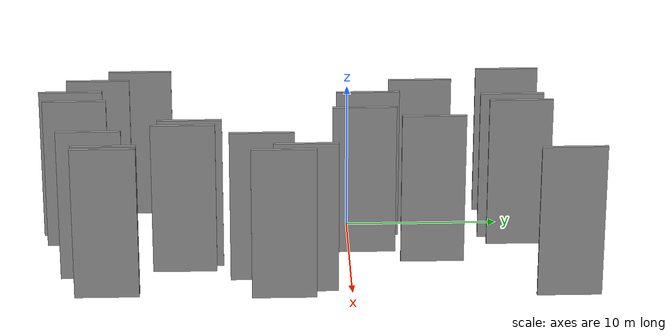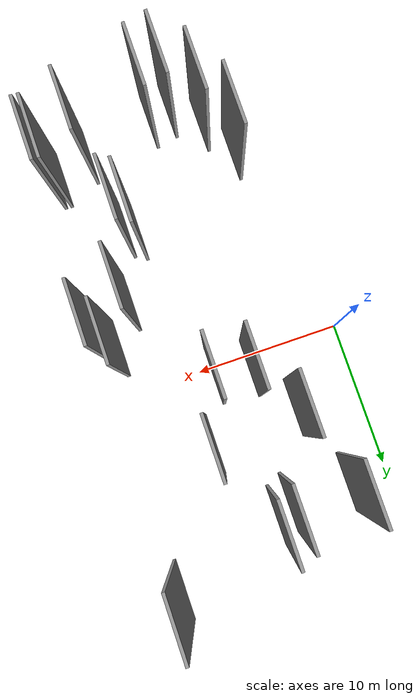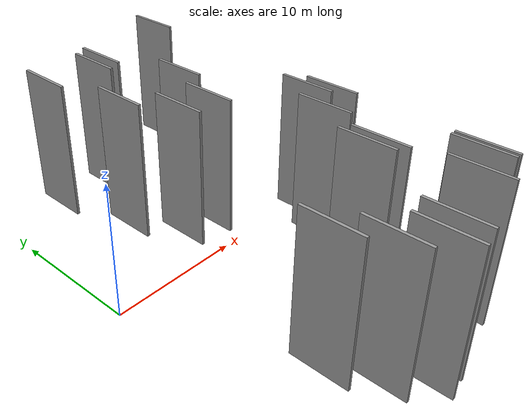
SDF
<sdf version="1.6">
 <world name="default">
  <scene>
   <sky><clouds><speed>12</speed></clouds></sky>
   <ambient>0.4 0.4 0.4 1</ambient>
   <background>0.7 0.7 0.7 1</background>
   <shadows>1</shadows>
  </scene>
  <gravity>0 0 -9.8066</gravity>
  <magnetic_field>6e-06 2.3e-05 -4.2e-05</magnetic_field>
  <physics default="0" name="default_physics" type="ode">
   <ode>
    <solver>
     <type>quick</type>
     <iters>10</iters>
     <sor>1.0</sor>
     <use_dynamic_moi_rescaling>0</use_dynamic_moi_rescaling>
    </solver>
    <constraints>
     <cfm>0</cfm>
     <erp>0.2</erp>
     <contact_max_correcting_vel>100</contact_max_correcting_vel>
     <contact_surface_layer>0.001</contact_surface_layer>
    </constraints>
   </ode>
   <max_step_size>0.004</max_step_size>
   <real_time_factor>1</real_time_factor>
   <real_time_update_rate>250</real_time_update_rate>
  </physics>
  <light name="sun" type="directional">
   <pose>0 0 10 0 0 0</pose>
   <diffuse>0.8 0.8 0.8 1</diffuse>
   <specular>0.2 0.2 0.2 1</specular>
   <attenuation>
    <range>1000</range>
    <constant>0.9</constant>
    <linear>0.01</linear>
    <quadratic>0.001</quadratic>
   </attenuation>
   <direction>-0.5 0.1 -0.9</direction>
  </light>
  <model name="grey_wall_1">
   <static>1</static>
   <pose>7.6689 -17.4527 2.5 0.000000 0.000000 1.570796</pose>
   <link name="link">
    <pose>0 0 5.00 0 0 0</pose>
    <collision name="collision"><geometry><box><size>4.00 0.2 10.00</size></box></geometry></collision>
    <visual name="visual">
     <cast_shadows>0</cast_shadows>
     <geometry><box><size>4.00 0.2 10.00</size></box></geometry>
     <material>
      <script>
       <uri>model://grey_wall/materials/scripts</uri>
       <uri>model://grey_wall/materials/textures</uri>
       <name>vrc/grey_wall</name>
      </script>
     </material>
    </visual>
   </link>
  </model>
  <model name="grey_wall_2">
   <static>1</static>
   <pose>15.4829 13.1585 2.5 0.000000 0.000000 1.570796</pose>
   <link name="link">
    <pose>0 0 5.00 0 0 0</pose>
    <collision name="collision"><geometry><box><size>4.00 0.2 10.00</size></box></geometry></collision>
    <visual name="visual">
     <cast_shadows>0</cast_shadows>
     <geometry><box><size>4.00 0.2 10.00</size></box></geometry>
     <material>
      <script>
       <uri>model://grey_wall/materials/scripts</uri>
       <uri>model://grey_wall/materials/textures</uri>
       <name>vrc/grey_wall</name>
      </script>
     </material>
    </visual>
   </link>
  </model>
  <model name="grey_wall_3">
   <static>1</static>
   <pose>8.2213 10.6185 2.5 0.000000 0.000000 1.570796</pose>
   <link name="link">
    <pose>0 0 5.00 0 0 0</pose>
    <collision name="collision"><geometry><box><size>4.00 0.2 10.00</size></box></geometry></collision>
    <visual name="visual">
     <cast_shadows>0</cast_shadows>
     <geometry><box><size>4.00 0.2 10.00</size></box></geometry>
     <material>
      <script>
       <uri>model://grey_wall/materials/scripts</uri>
       <uri>model://grey_wall/materials/textures</uri>
       <name>vrc/grey_wall</name>
      </script>
     </material>
    </visual>
   </link>
  </model>
  <model name="grey_wall_4">
   <static>1</static>
   <pose>9.1236 0.7309 2.5 0.000000 0.000000 1.570796</pose>
   <link name="link">
    <pose>0 0 5.00 0 0 0</pose>
    <collision name="collision"><geometry><box><size>4.00 0.2 10.00</size></box></geometry></collision>
    <visual name="visual">
     <cast_shadows>0</cast_shadows>
     <geometry><box><size>4.00 0.2 10.00</size></box></geometry>
     <material>
      <script>
       <uri>model://grey_wall/materials/scripts</uri>
       <uri>model://grey_wall/materials/textures</uri>
       <name>vrc/grey_wall</name>
      </script>
     </material>
    </visual>
   </link>
  </model>
  <model name="grey_wall_5">
   <static>1</static>
   <pose>10.8426 -10.1798 2.5 0.000000 0.000000 1.570796</pose>
   <link name="link">
    <pose>0 0 5.00 0 0 0</pose>
    <collision name="collision"><geometry><box><size>4.00 0.2 10.00</size></box></geometry></collision>
    <visual name="visual">
     <cast_shadows>0</cast_shadows>
     <geometry><box><size>4.00 0.2 10.00</size></box></geometry>
     <material>
      <script>
       <uri>model://grey_wall/materials/scripts</uri>
       <uri>model://grey_wall/materials/textures</uri>
       <name>vrc/grey_wall</name>
      </script>
     </material>
    </visual>
   </link>
  </model>
  <model name="grey_wall_6">
   <static>1</static>
   <pose>4.7963 4.4193 2.5 0.000000 0.000000 1.570796</pose>
   <link name="link">
    <pose>0 0 5.00 0 0 0</pose>
    <collision name="collision"><geometry><box><size>4.00 0.2 10.00</size></box></geometry></collision>
    <visual name="visual">
     <cast_shadows>0</cast_shadows>
     <geometry><box><size>4.00 0.2 10.00</size></box></geometry>
     <material>
      <script>
       <uri>model://grey_wall/materials/scripts</uri>
       <uri>model://grey_wall/materials/textures</uri>
       <name>vrc/grey_wall</name>
      </script>
     </material>
    </visual>
   </link>
  </model>
  <model name="grey_wall_7">
   <static>1</static>
   <pose>11.5899 -10.6027 2.5 0.000000 0.000000 1.570796</pose>
   <link name="link">
    <pose>0 0 5.00 0 0 0</pose>
    <collision name="collision"><geometry><box><size>4.00 0.2 10.00</size></box></geometry></collision>
    <visual name="visual">
     <cast_shadows>0</cast_shadows>
     <geometry><box><size>4.00 0.2 10.00</size></box></geometry>
     <material>
      <script>
       <uri>model://grey_wall/materials/scripts</uri>
       <uri>model://grey_wall/materials/textures</uri>
       <name>vrc/grey_wall</name>
      </script>
     </material>
    </visual>
   </link>
  </model>
  <model name="grey_wall_8">
   <static>1</static>
   <pose>15.0065 -15.3878 2.5 0.000000 0.000000 1.570796</pose>
   <link name="link">
    <pose>0 0 5.00 0 0 0</pose>
    <collision name="collision"><geometry><box><size>4.00 0.2 10.00</size></box></geometry></collision>
    <visual name="visual">
     <cast_shadows>0</cast_shadows>
     <geometry><box><size>4.00 0.2 10.00</size></box></geometry>
     <material>
      <script>
       <uri>model://grey_wall/materials/scripts</uri>
       <uri>model://grey_wall/materials/textures</uri>
       <name>vrc/grey_wall</name>
      </script>
     </material>
    </visual>
   </link>
  </model>
  <model name="grey_wall_9">
   <static>1</static>
   <pose>15.3552 -4.4436 2.5 0.000000 0.000000 1.570796</pose>
   <link name="link">
    <pose>0 0 5.00 0 0 0</pose>
    <collision name="collision"><geometry><box><size>4.00 0.2 10.00</size></box></geometry></collision>
    <visual name="visual">
     <cast_shadows>0</cast_shadows>
     <geometry><box><size>4.00 0.2 10.00</size></box></geometry>
     <material>
      <script>
       <uri>model://grey_wall/materials/scripts</uri>
       <uri>model://grey_wall/materials/textures</uri>
       <name>vrc/grey_wall</name>
      </script>
     </material>
    </visual>
   </link>
  </model>
  <model name="grey_wall_10">
   <static>1</static>
   <pose>7.1975 10.1166 2.5 0.000000 0.000000 1.570796</pose>
   <link name="link">
    <pose>0 0 5.00 0 0 0</pose>
    <collision name="collision"><geometry><box><size>4.00 0.2 10.00</size></box></geometry></collision>
    <visual name="visual">
     <cast_shadows>0</cast_shadows>
     <geometry><box><size>4.00 0.2 10.00</size></box></geometry>
     <material>
      <script>
       <uri>model://grey_wall/materials/scripts</uri>
       <uri>model://grey_wall/materials/textures</uri>
       <name>vrc/grey_wall</name>
      </script>
     </material>
    </visual>
   </link>
  </model>
  <model name="grey_wall_11">
   <static>1</static>
   <pose>6.7124 1.0219 2.5 0.000000 0.000000 1.570796</pose>
   <link name="link">
    <pose>0 0 5.00 0 0 0</pose>
    <collision name="collision"><geometry><box><size>4.00 0.2 10.00</size></box></geometry></collision>
    <visual name="visual">
     <cast_shadows>0</cast_shadows>
     <geometry><box><size>4.00 0.2 10.00</size></box></geometry>
     <material>
      <script>
       <uri>model://grey_wall/materials/scripts</uri>
       <uri>model://grey_wall/materials/textures</uri>
       <name>vrc/grey_wall</name>
      </script>
     </material>
    </visual>
   </link>
  </model>
  <model name="grey_wall_12">
   <static>1</static>
   <pose>6.2093 -17.7446 2.5 0.000000 0.000000 1.570796</pose>
   <link name="link">
    <pose>0 0 5.00 0 0 0</pose>
    <collision name="collision"><geometry><box><size>4.00 0.2 10.00</size></box></geometry></collision>
    <visual name="visual">
     <cast_shadows>0</cast_shadows>
     <geometry><box><size>4.00 0.2 10.00</size></box></geometry>
     <material>
      <script>
       <uri>model://grey_wall/materials/scripts</uri>
       <uri>model://grey_wall/materials/textures</uri>
       <name>vrc/grey_wall</name>
      </script>
     </material>
    </visual>
   </link>
  </model>
  <model name="grey_wall_13">
   <static>1</static>
   <pose>14.5889 -15.3674 2.5 0.000000 0.000000 1.570796</pose>
   <link name="link">
    <pose>0 0 5.00 0 0 0</pose>
    <collision name="collision"><geometry><box><size>4.00 0.2 10.00</size></box></geometry></collision>
    <visual name="visual">
     <cast_shadows>0</cast_shadows>
     <geometry><box><size>4.00 0.2 10.00</size></box></geometry>
     <material>
      <script>
       <uri>model://grey_wall/materials/scripts</uri>
       <uri>model://grey_wall/materials/textures</uri>
       <name>vrc/grey_wall</name>
      </script>
     </material>
    </visual>
   </link>
  </model>
  <model name="grey_wall_14">
   <static>1</static>
   <pose>10.5869 4.9874 2.5 0.000000 0.000000 1.570796</pose>
   <link name="link">
    <pose>0 0 5.00 0 0 0</pose>
    <collision name="collision"><geometry><box><size>4.00 0.2 10.00</size></box></geometry></collision>
    <visual name="visual">
     <cast_shadows>0</cast_shadows>
     <geometry><box><size>4.00 0.2 10.00</size></box></geometry>
     <material>
      <script>
       <uri>model://grey_wall/materials/scripts</uri>
       <uri>model://grey_wall/materials/textures</uri>
       <name>vrc/grey_wall</name>
      </script>
     </material>
    </visual>
   </link>
  </model>
  <model name="grey_wall_15">
   <static>1</static>
   <pose>3.0053 -13.4554 2.5 0.000000 0.000000 1.570796</pose>
   <link name="link">
    <pose>0 0 5.00 0 0 0</pose>
    <collision name="collision"><geometry><box><size>4.00 0.2 10.00</size></box></geometry></collision>
    <visual name="visual">
     <cast_shadows>0</cast_shadows>
     <geometry><box><size>4.00 0.2 10.00</size></box></geometry>
     <material>
      <script>
       <uri>model://grey_wall/materials/scripts</uri>
       <uri>model://grey_wall/materials/textures</uri>
       <name>vrc/grey_wall</name>
      </script>
     </material>
    </visual>
   </link>
  </model>
  <model name="grey_wall_16">
   <static>1</static>
   <pose>3.1332 10.1201 2.5 0.000000 0.000000 1.570796</pose>
   <link name="link">
    <pose>0 0 5.00 0 0 0</pose>
    <collision name="collision"><geometry><box><size>4.00 0.2 10.00</size></box></geometry></collision>
    <visual name="visual">
     <cast_shadows>0</cast_shadows>
     <geometry><box><size>4.00 0.2 10.00</size></box></geometry>
     <material>
      <script>
       <uri>model://grey_wall/materials/scripts</uri>
       <uri>model://grey_wall/materials/textures</uri>
       <name>vrc/grey_wall</name>
      </script>
     </material>
    </visual>
   </link>
  </model>
  <model name="grey_wall_17">
   <static>1</static>
   <pose>12.8519 -5.7464 2.5 0.000000 0.000000 1.570796</pose>
   <link name="link">
    <pose>0 0 5.00 0 0 0</pose>
    <collision name="collision"><geometry><box><size>4.00 0.2 10.00</size></box></geometry></collision>
    <visual name="visual">
     <cast_shadows>0</cast_shadows>
     <geometry><box><size>4.00 0.2 10.00</size></box></geometry>
     <material>
      <script>
       <uri>model://grey_wall/materials/scripts</uri>
       <uri>model://grey_wall/materials/textures</uri>
       <name>vrc/grey_wall</name>
      </script>
     </material>
    </visual>
   </link>
  </model>
  <model name="grey_wall_18">
   <static>1</static>
   <pose>12.3858 -16.3602 2.5 0.000000 0.000000 1.570796</pose>
   <link name="link">
    <pose>0 0 5.00 0 0 0</pose>
    <collision name="collision"><geometry><box><size>4.00 0.2 10.00</size></box></geometry></collision>
    <visual name="visual">
     <cast_shadows>0</cast_shadows>
     <geometry><box><size>4.00 0.2 10.00</size></box></geometry>
     <material>
      <script>
       <uri>model://grey_wall/materials/scripts</uri>
       <uri>model://grey_wall/materials/textures</uri>
       <name>vrc/grey_wall</name>
      </script>
     </material>
    </visual>
   </link>
  </model>
  <model name="grey_wall_19">
   <static>1</static>
   <pose>14.5172 -3.0712 2.5 0.000000 0.000000 1.570796</pose>
   <link name="link">
    <pose>0 0 5.00 0 0 0</pose>
    <collision name="collision"><geometry><box><size>4.00 0.2 10.00</size></box></geometry></collision>
    <visual name="visual">
     <cast_shadows>0</cast_shadows>
     <geometry><box><size>4.00 0.2 10.00</size></box></geometry>
     <material>
      <script>
       <uri>model://grey_wall/materials/scripts</uri>
       <uri>model://grey_wall/materials/textures</uri>
       <name>vrc/grey_wall</name>
      </script>
     </material>
    </visual>
   </link>
  </model>
  <model name="grey_wall_20">
   <static>1</static>
   <pose>4.4222 -16.0964 2.5 0.000000 0.000000 1.570796</pose>
   <link name="link">
    <pose>0 0 5.00 0 0 0</pose>
    <collision name="collision"><geometry><box><size>4.00 0.2 10.00</size></box></geometry></collision>
    <visual name="visual">
     <cast_shadows>0</cast_shadows>
     <geometry><box><size>4.00 0.2 10.00</size></box></geometry>
     <material>
      <script>
       <uri>model://grey_wall/materials/scripts</uri>
       <uri>model://grey_wall/materials/textures</uri>
       <name>vrc/grey_wall</name>
      </script>
     </material>
    </visual>
   </link>
  </model>
 </world>
</sdf>
